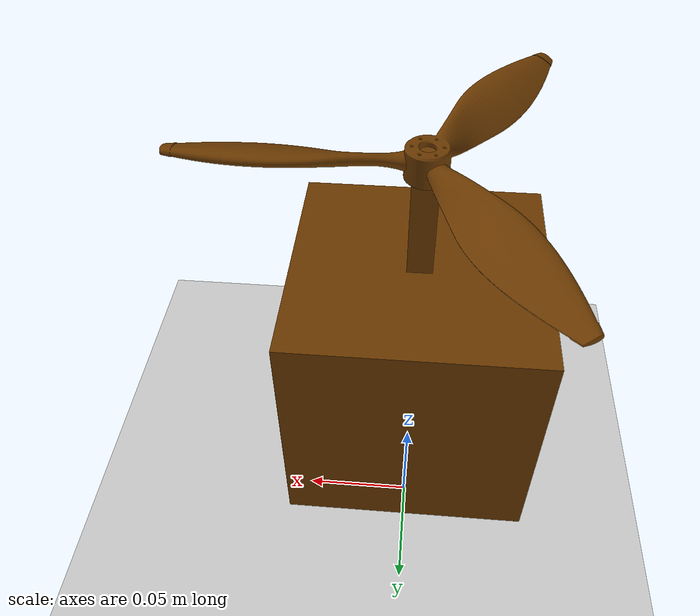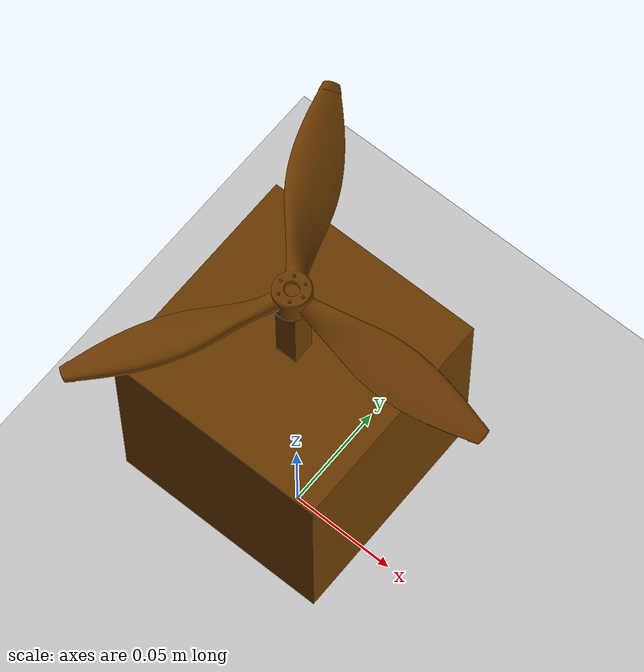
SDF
<?xml version="1.0" ?>
<sdf version="1.6">
  <world name="lift_drag">
    <plugin
      filename="ignition-gazebo-physics-system"
      name="gz::sim::systems::Physics">
    </plugin>
    <plugin
      filename="ignition-gazebo-user-commands-system"
      name="gz::sim::systems::UserCommands">
    </plugin>
    <plugin
      filename="ignition-gazebo-scene-broadcaster-system"
      name="gz::sim::systems::SceneBroadcaster">
    </plugin>

    <light type="directional" name="sun">
      <cast_shadows>true</cast_shadows>
      <pose>0 0 10 0 0 0</pose>
      <diffuse>1 1 1 1</diffuse>
      <specular>0.5 0.5 0.5 1</specular>
      <attenuation>
        <range>1000</range>
        <constant>0.9</constant>
        <linear>0.01</linear>
        <quadratic>0.001</quadratic>
      </attenuation>
      <direction>-0.5 0.1 -0.9</direction>
    </light>

    <model name="ground_plane">
      <static>true</static>
      <link name="link">
        <collision name="collision">
          <geometry>
            <plane>
              <normal>0 0 1</normal>
              <size>100 100</size>
            </plane>
          </geometry>
        </collision>
        <visual name="visual">
          <geometry>
            <plane>
              <normal>0 0 1</normal>
              <size>100 100</size>
            </plane>
          </geometry>
          <material>
            <ambient>0.8 0.8 0.8 1</ambient>
            <diffuse>0.8 0.8 0.8 1</diffuse>
            <specular>0.8 0.8 0.8 1</specular>
          </material>
        </visual>
      </link>
    </model>

    <include>
      <uri>model://7in_3blades_v2</uri>
      <pose>0 0 0 0 0 0</pose>
    </include>

  </world>
</sdf>

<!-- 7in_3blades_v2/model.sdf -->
<sdf version='1.9'>

  <model name='7in_3blades_v2'>
    <link name='7in_3blades_v2'>
      <pose>0 0 0.2 0.0 0 0</pose>
      <inertial>

        <mass>0.01836258405216832</mass>
        <inertia>
          <ixx>2.2563557993677919e-05</ixx>
          <ixy>-2.0635406577929061e-11</ixy>
          <ixz>1.5233092565125621e-12</ixz>
          <iyy>2.2563558967389489e-05</iyy>
          <iyz>1.684386462773302e-12</iyz>
          <izz>4.4974610941786453e-05</izz>
        </inertia>
      </inertial>
      <collision name='7in_3blades_collision'>
        <pose>0 0 0 0 0 0</pose>
        <geometry>
          <mesh>
            <scale>0.001 0.001 0.001</scale>
            <uri>meshes/7in_3blades.stl</uri>
          </mesh>
        </geometry>
      </collision>
      <visual name='7in_3blades_visual'>
        <pose>0 0 0 0 0 0</pose>
        <geometry>
          <mesh>
            <scale>0.001 0.001 0.001</scale>
            <uri>meshes/7in_3blades.stl</uri>
          </mesh>
        </geometry>
        <material>
          <ambient>0.5 0.2 0.2 1.0</ambient>
          <diffuse>.421 0.225 0.0 1.0</diffuse>
          <specular>0.1 0.1 0.1 1.0</specular>
          <emissive>0.0 0.0 0.0 1.0</emissive>
        </material>
      </visual>
    </link>

    <link name="body">
        <pose>0.0 0 0.11 0 0 0</pose>
        <inertial>
          <pose>0.0 0.0 0.0 0.0 0.0 0.0</pose>
          <inertia>
            <ixx>1.8</ixx>
            <ixy>0.0</ixy>
            <ixz>0.0</ixz>
            <iyy>1.8</iyy>
            <iyz>0.0</iyz>
            <izz>1.8</izz>
          </inertia>
          <mass>0.5</mass>
        </inertial>
        <collision name="collision">
          <geometry>
            <box>
              <size>0.1 0.1 0.1</size>
            </box>
          </geometry>
          <surface>
            <friction>
              <ode>
                <mu>0.1</mu>
                <mu2>0.1</mu2>
              </ode>
            </friction>
          </surface>
        </collision>
        <visual name="visual">
          <geometry>
            <box>
              <size>0.1 0.1 0.1</size>
            </box>
          </geometry>
          <material>
            <ambient>0.2 0.2 0.2 1.0</ambient>
            <diffuse>.421 0.225 0.0 1.0</diffuse>
          </material>
        </visual>
      </link>
      <link name="rod_1">
        <pose>0 0 0.185 0 0 0</pose>
        <inertial>
          <pose>0.0 0.0 0 0.0 0.0 0.0</pose>
          <inertia>
            <ixx>0.012</ixx>
            <ixy>0.0</ixy>
            <ixz>0.0</ixz>
            <iyy>0.012</iyy>
            <iyz>0.0</iyz>
            <izz>0.0012</izz>
          </inertia>
          <mass>1.0</mass>
        </inertial>
        <collision name="collision">
          <geometry>
            <box>
              <size>0.01 0.01 0.05</size>
            </box>
          </geometry>
        </collision>
        <visual name="visual">
          <geometry>
            <box>
              <size>0.01 0.01 0.05</size>
            </box>
          </geometry>
          <material>
            <ambient>0.3 0.3 0.3 1.0</ambient>
            <diffuse>.421 0.225 0.0 1.0</diffuse>
          </material>
        </visual>
      </link>

      <joint name="rod_1_joint" type="revolute">
        <parent>body</parent>
        <child>rod_1</child>
        <pose>0.0 0.0 0.0 0.0 0.0 0.0</pose>
        <axis>
          <limit>
            <lower>-1e16</lower>
            <upper>1e16</upper>
          </limit>
          <xyz>0.0 0.0 -1.0</xyz>
          <dynamics>
            <damping>0.0001</damping>
          </dynamics>
        </axis>
        <physics>
          <ode>
            <cfm_damping>1</cfm_damping>
          </ode>
        </physics>
      </joint>
      <joint name="7in_3blades_joint" type="fixed">
        <parent>rod_1</parent>
        <child>7in_3blades_v2</child>
        <pose>0.0 0.0 0.0 0.0 0.0 0.0</pose>
      </joint>

      <plugin
        filename="ignition-gazebo-joint-state-publisher-system"
        name="gz::sim::systems::JointStatePublisher"></plugin>

      <plugin filename="ignition-gazebo-lift-drag-system"
        name="gz::sim::systems::LiftDrag">
        <a0>.1</a0>
        <cla>.1</cla>
        <cda>0.001</cda>
        <cma>0</cma>
        <cp>0 0.08 0.003</cp>
        <area>0.005</area>     <!-- algo mayor si hace falta -->
        <air_density>1.225</air_density>
        <forward>0 1 0</forward>
        <upward>0 0 1</upward>  <!-- o 0 0 -1 si mediste empuje negativo -->
        <link_name>7in_3blades_v2</link_name>
      </plugin>

      <plugin
        filename="ignition-gazebo-apply-joint-force-system"
        name="gz::sim::systems::ApplyJointForce">
        <joint_name>rod_1_joint</joint_name>
      </plugin>

  </model>
</sdf>
